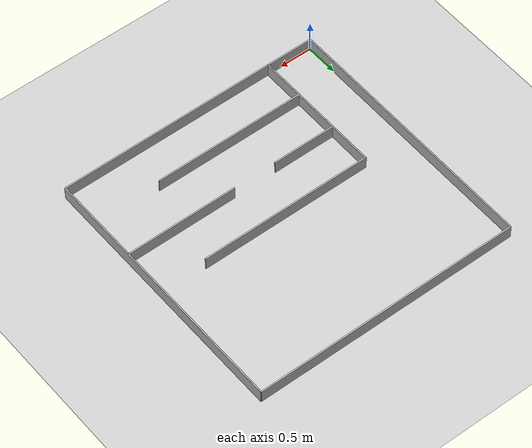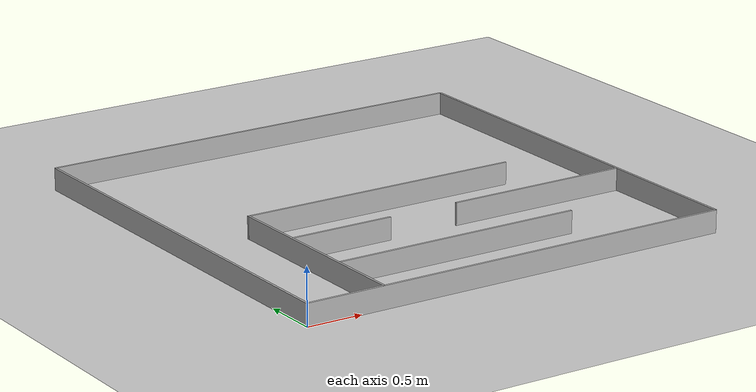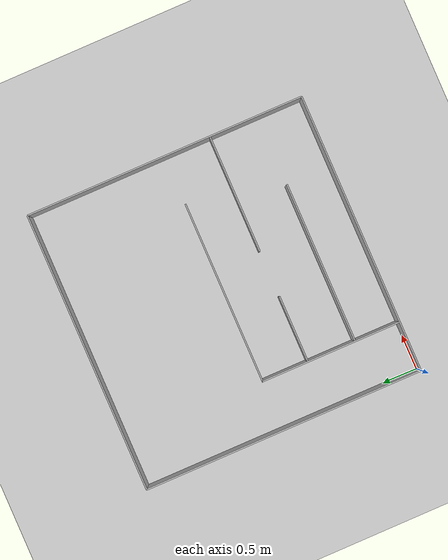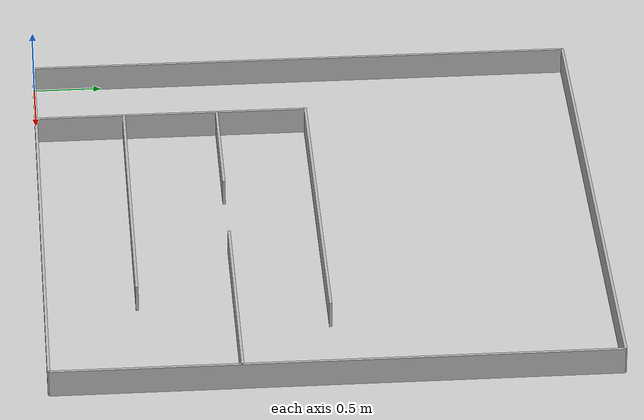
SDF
<?xml version="1.0" ?>
<!-- |    This document was autogenerated by xacro from world.world.xacro              | -->
<!-- |    EDITING THIS FILE BY HAND IS NOT RECOMMENDED                                 | -->
<sdf version="1.6">
  <world name="default">
    <include>
      <uri>model://ground_plane</uri>
    </include>
    <include>
      <uri>model://sun</uri>
    </include>
    <model name="north">
      <static>true</static>
      <link name="link">
        <collision name="collision">
          <geometry>
            <box>
              <size>4 0.02 0.2</size>
            </box>
          </geometry>
        </collision>
        <visual name="visual">
          <geometry>
            <box>
              <size>4 0.02 0.2</size>
            </box>
          </geometry>
        </visual>
      </link>
      <pose>2 4 0.1 0 0 0</pose>
    </model>
    <model name="south">
      <static>true</static>
      <link name="link">
        <collision name="collision">
          <geometry>
            <box>
              <size>4 0.02 0.2</size>
            </box>
          </geometry>
        </collision>
        <visual name="visual">
          <geometry>
            <box>
              <size>4 0.02 0.2</size>
            </box>
          </geometry>
        </visual>
      </link>
      <pose>2 0 0.1 0 0 0</pose>
    </model>
    <model name="east">
      <static>true</static>
      <link name="link">
        <collision name="collision">
          <geometry>
            <box>
              <size>4 0.02 0.2</size>
            </box>
          </geometry>
        </collision>
        <visual name="visual">
          <geometry>
            <box>
              <size>4 0.02 0.2</size>
            </box>
          </geometry>
        </visual>
      </link>
      <pose>0 2 0.1 0 0 1.57</pose>
    </model>
    <model name="west">
      <static>true</static>
      <link name="link">
        <collision name="collision">
          <geometry>
            <box>
              <size>4 0.02 0.2</size>
            </box>
          </geometry>
        </collision>
        <visual name="visual">
          <geometry>
            <box>
              <size>4 0.02 0.2</size>
            </box>
          </geometry>
        </visual>
      </link>
      <pose>4 2 0.1 0 0 1.57</pose>
    </model>
    <model name="inner1">
      <static>true</static>
      <link name="link">
        <collision name="collision">
          <geometry>
            <box>
              <size>2 0.02 0.2</size>
            </box>
          </geometry>
        </collision>
        <visual name="visual">
          <geometry>
            <box>
              <size>2 0.02 0.2</size>
            </box>
          </geometry>
        </visual>
      </link>
      <pose>0.71 1 0.1 0 0 1.57</pose>
    </model>
    <model name="inner2">
      <static>true</static>
      <link name="link">
        <collision name="collision">
          <geometry>
            <box>
              <size>2.6 0.02 0.2</size>
            </box>
          </geometry>
        </collision>
        <visual name="visual">
          <geometry>
            <box>
              <size>2.6 0.02 0.2</size>
            </box>
          </geometry>
        </visual>
      </link>
      <pose>2 2 0.1 0 0 0</pose>
    </model>
    <model name="inner3">
      <static>true</static>
      <link name="link">
        <collision name="collision">
          <geometry>
            <box>
              <size>0.95 0.02 0.2</size>
            </box>
          </geometry>
        </collision>
        <visual name="visual">
          <geometry>
            <box>
              <size>0.95 0.02 0.2</size>
            </box>
          </geometry>
        </visual>
      </link>
      <pose>1.19 1.34 0.1 0 0 0</pose>
    </model>
    <model name="inner4">
      <static>true</static>
      <link name="link">
        <collision name="collision">
          <geometry>
            <box>
              <size>1.68 0.02 0.2</size>
            </box>
          </geometry>
        </collision>
        <visual name="visual">
          <geometry>
            <box>
              <size>1.68 0.02 0.2</size>
            </box>
          </geometry>
        </visual>
      </link>
      <pose>3.16 1.34 0.1 0 0 0</pose>
    </model>
    <model name="inner5">
      <static>true</static>
      <link name="link">
        <collision name="collision">
          <geometry>
            <box>
              <size>2.3 0.02 0.2</size>
            </box>
          </geometry>
        </collision>
        <visual name="visual">
          <geometry>
            <box>
              <size>2.3 0.02 0.2</size>
            </box>
          </geometry>
        </visual>
      </link>
      <pose>1.85 0.65 0.1 0 0 0</pose>
    </model>
  </world>
</sdf>
